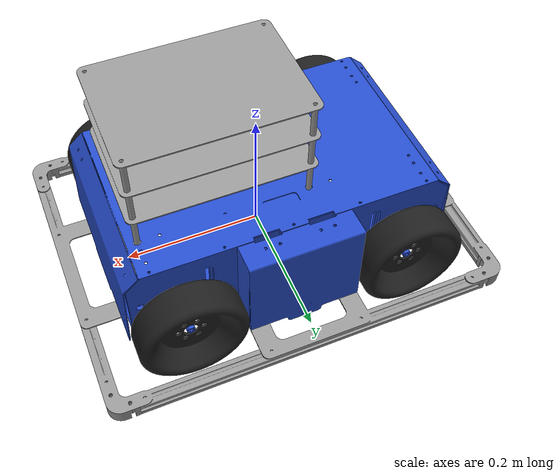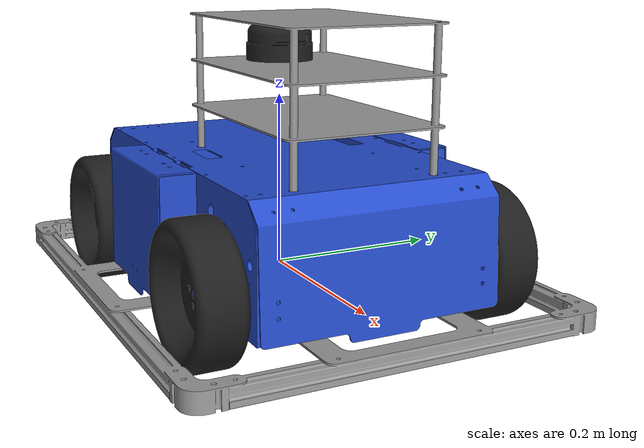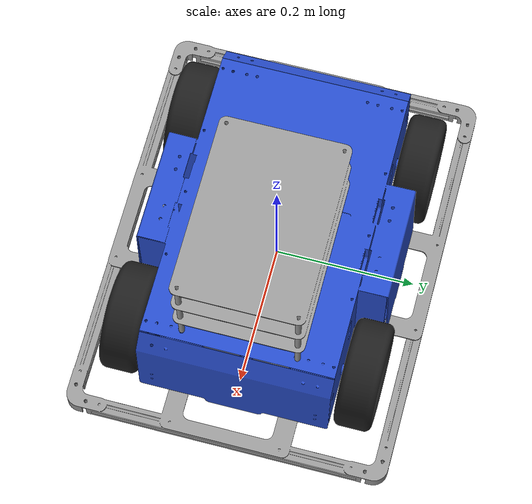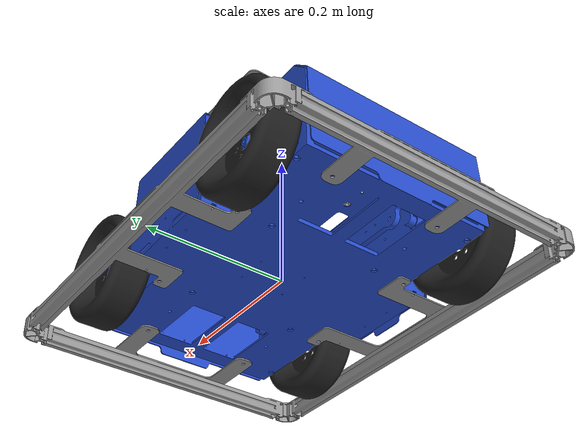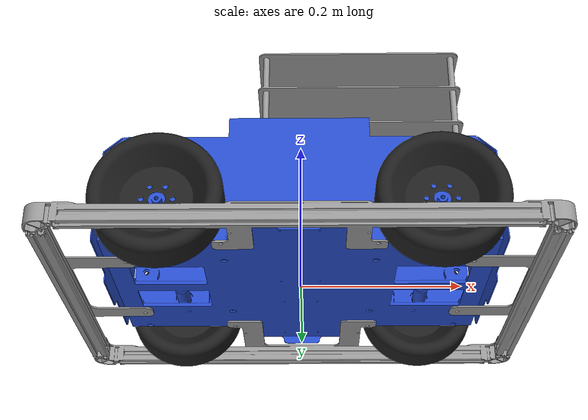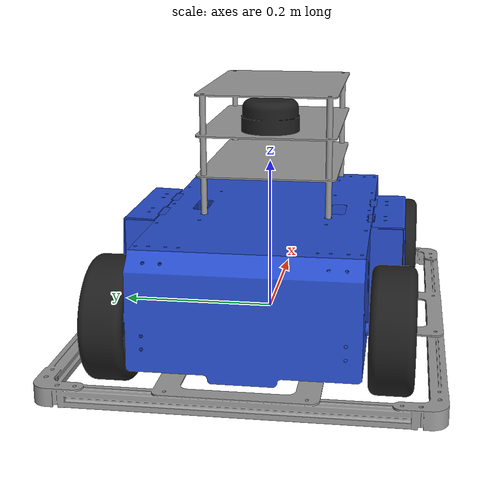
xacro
<?xml version="1.0" ?>
<robot name="amr" xmlns:xacro="http://ros.org/wiki/xacro">
  <xacro:include filename="$(find amr_description)/urdf/amr.gazebo.xacro"/>

  <link name="base_link">
    <visual>
      <origin xyz="0 0 0" rpy="0 0 0"/>
      <geometry>
        <mesh filename="package://amr_description/meshes/base.stl" scale="0.001 0.001 0.001"/>
      </geometry>
    </visual>

    <collision>
      <origin xyz="0.0 0 0.07" rpy="0 0 0"/>
      <geometry>
        <box size="0.48 0.36 0.14"/>
      </geometry>
    </collision>

    <inertial>
      <origin xyz="0 0 0.0" rpy="0 0 0"/>
      <mass value="20"/>
      <inertia ixx="0.33" ixy="0" ixz="0" iyy="0.54" iyz="0" izz="0.77"/>
    </inertial>
  </link>

  <joint name="bumper_joint" type="fixed">
    <parent link="base_link"/>
    <child link="bumper_link"/>
    <origin xyz="0 0 0" rpy="0 0 0"/>
  </joint>

  <link name="bumper_link">
    <visual>
      <origin xyz="0 0 0" rpy="0 0 0"/>
      <geometry>
        <mesh filename="package://amr_description/meshes/bumper.stl" scale="0.001 0.001 0.001"/>
      </geometry>
    </visual>

    <collision>
      <origin xyz="0 0 -0.011" rpy="0 0 0"/>
      <geometry>
        <box size="0.59 0.46 0.022"/>
      </geometry>
    </collision>

    <inertial>
      <origin xyz="0 0 0" rpy="0 0 0"/>
      <mass value="2.0"/>
      <inertia ixx="0.1" ixy="0" ixz="0" iyy="0.15" iyz="0" izz="0.2"/>
    </inertial>
  </link>

  <joint name="plate_joint1" type="fixed">
    <parent link="base_link"/>
    <child link="plate_link1"/>
    <origin xyz="0 0 0" rpy="0 0 0"/>
  </joint>

  <link name="plate_link1">
    <visual>
      <origin xyz="0 0 0" rpy="0 0 0"/>
      <geometry>
        <mesh filename="package://amr_description/meshes/top_plate.stl" scale="0.001 0.001 0.001"/>
      </geometry>
    </visual>

    <collision>
      <origin xyz="0.076 0 0.187" rpy="0 0 0"/>
      <geometry>
        <box size="0.26 0.18 0.002"/>
      </geometry>
    </collision>

    <collision>
      <origin xyz="0.076 0 0.239" rpy="0 0 0"/>
      <geometry>
        <box size="0.26 0.18 0.002"/>
      </geometry>
    </collision>

    <collision>
      <origin xyz="0.076 0 0.291" rpy="0 0 0"/>
      <geometry>
        <box size="0.26 0.18 0.002"/>
      </geometry>
    </collision>

    <collision>
      <origin xyz="-0.044 0.08 0.213" rpy="0 0 0"/>
      <geometry>
        <cylinder length="0.16" radius="0.004"/>
      </geometry>
    </collision>

    <collision>
      <origin xyz="-0.044 -0.08 0.213" rpy="0 0 0"/>
      <geometry>
        <cylinder length="0.16" radius="0.004"/>
      </geometry>
    </collision>

    <collision>
      <origin xyz="0.196 -0.08 0.213" rpy="0 0 0"/>
      <geometry>
        <cylinder length="0.16" radius="0.004"/>
      </geometry>
    </collision>

    <collision>
      <origin xyz="0.196 0.08 0.213" rpy="0 0 0"/>
      <geometry>
        <cylinder length="0.16" radius="0.004"/>
      </geometry>
    </collision>

    <inertial>
      <origin xyz="0.076 0 0.2" rpy="0 0 0"/>
      <mass value="0.5"/>
      <inertia ixx="0.014" ixy="0" ixz="0" iyy="0.024" iyz="0" izz="0.028"/>
    </inertial>
  </link>
  <joint name="wheel_fl_axle_joint" type="fixed">
      <origin xyz="0.161 0.167 0.036" rpy="0 0 0"/>
      <parent link="base_link"/>
      <child link="wheel_fl_axle_link"/>
  </joint>

  <link name="wheel_fl_axle_link">
    <inertial>
      <mass value="0.1"/>
      <origin xyz="0 0 0"/>
      <inertia ixx="1.0" ixy="0.0" ixz="0.0" iyy="1.0" iyz="0.0" izz="1.0"/>
    </inertial>

    <collision>
        <origin xyz="0 0 0" rpy="1.57 0 0"/>
        <geometry>
        <cylinder length="0.03" radius="0.01"/>
      </geometry>
    </collision>
  </link>

  <joint name="wheel_fl_joint" type="continuous">
    <parent link="wheel_fl_axle_link"/>
    <child link="wheel_fl_link"/>
    <origin xyz="0 0 0" rpy="0 0 0"/>
    <axis xyz="0 1 0"/>
    <dynamics damping="0.02" friction="0.01"/>
  </joint>

  <link name="wheel_fl_link">
    <visual>
      <origin xyz="0 0 0" rpy="0 0 0"/>
      <geometry>
        <mesh filename="package://amr_description/meshes/wheel.stl" scale="0.001 0.001 0.001"/>
      </geometry>
    </visual>

    <collision>
      <origin xyz="0 0 0" rpy="1.57 0 0"/>
      <geometry>
        <cylinder length="0.053" radius="0.072"/>
      </geometry>
    </collision>

    <inertial>
      <origin xyz="0 0 0" />
      <mass value="1.12" />
      <inertia ixx="0.0012" ixy="0" ixz="0.0" iyy="0.0021" iyz="0" izz="0.0012"/>
    </inertial>
  </link>

  <joint name="wheel_fr_axle_joint" type="fixed">
      <origin xyz="0.161 -0.167 0.036" rpy="0 0 0"/>
      <parent link="base_link"/>
      <child link="wheel_fr_axle_link"/>
  </joint>

  <link name="wheel_fr_axle_link">
    <inertial>
      <mass value="0.1"/>
      <origin xyz="0 0 0"/>
      <inertia ixx="1.0" ixy="0.0" ixz="0.0" iyy="1.0" iyz="0.0" izz="1.0"/>
    </inertial>

    <collision>
        <origin xyz="0 0 0" rpy="1.57 0 0"/>
        <geometry>
        <cylinder length="0.03" radius="0.01"/>
      </geometry>
    </collision>
  </link>

  <joint name="wheel_fr_joint" type="continuous">
    <parent link="wheel_fr_axle_link"/>
    <child link="wheel_fr_link"/>
    <origin xyz="0 0 0" rpy="0 0 0"/>
    <axis xyz="0 1 0"/>
    <dynamics damping="0.02" friction="0.01"/>
  </joint>

  <link name="wheel_fr_link">
    <visual>
      <origin xyz="0 0 0" rpy="0 0 0"/>
      <geometry>
        <mesh filename="package://amr_description/meshes/wheel.stl" scale="0.001 0.001 0.001"/>
      </geometry>
    </visual>

    <collision>
      <origin xyz="0 0 0" rpy="1.57 0 0"/>
      <geometry>
        <cylinder length="0.053" radius="0.072"/>
      </geometry>
    </collision>

    <inertial>
      <origin xyz="0 0 0" />
      <mass value="1.12" />
      <inertia ixx="0.0012" ixy="0" ixz="0.0" iyy="0.0021" iyz="0" izz="0.0012"/>
    </inertial>
  </link>

  <joint name="wheel_rl_axle_joint" type="fixed">
      <origin xyz="-0.161 0.167 0.036" rpy="0 0 0"/>
      <parent link="base_link"/>
      <child link="wheel_rl_axle_link"/>
  </joint>

  <link name="wheel_rl_axle_link">
    <inertial>
      <mass value="0.1"/>
      <origin xyz="0 0 0"/>
      <inertia ixx="1.0" ixy="0.0" ixz="0.0" iyy="1.0" iyz="0.0" izz="1.0"/>
    </inertial>
    <collision>
        <origin xyz="0 0 0" rpy="1.57 0 0"/>
        <geometry>
        <cylinder length="0.03" radius="0.01"/>
      </geometry>
    </collision>
  </link>

  <joint name="wheel_rl_joint" type="continuous">
    <parent link="wheel_rl_axle_link"/>
    <child link="wheel_rl_link"/>
    <origin xyz="0 0 0" rpy="0 0 0"/>
    <axis xyz="0 1 0"/>
    <dynamics damping="0.02" friction="0.01"/>
  </joint>

  <link name="wheel_rl_link">
    <visual>
      <origin xyz="0 0 0" rpy="0 0 0"/>
      <geometry>
        <mesh filename="package://amr_description/meshes/wheel.stl" scale="0.001 0.001 0.001"/>
      </geometry>
    </visual>

    <collision>
      <origin xyz="0 0 0" rpy="1.57 0 0"/>
      <geometry>
        <cylinder length="0.053" radius="0.072"/>
      </geometry>
    </collision>

    <inertial>
      <origin xyz="0 0 0" />
      <mass value="1.12" />
      <inertia ixx="0.0012" ixy="0" ixz="0.0" iyy="0.0021" iyz="0" izz="0.0012"/>
    </inertial>
  </link>

  <joint name="wheel_rr_axle_joint" type="fixed">
      <origin xyz="-0.161 -0.167 0.036" rpy="0 0 0"/>
      <parent link="base_link"/>
      <child link="wheel_rr_axle_link"/>
  </joint>

  <link name="wheel_rr_axle_link">
    <inertial>
      <mass value="0.1"/>
      <origin xyz="0 0 0"/>
      <inertia ixx="1.0" ixy="0.0" ixz="0.0" iyy="1.0" iyz="0.0" izz="1.0"/>
    </inertial>
    <collision>
        <origin xyz="0 0 0" rpy="1.57 0 0"/>
        <geometry>
          <cylinder length="0.03" radius="0.01"/>
        </geometry>
    </collision>
  </link>

  <joint name="wheel_rr_joint" type="continuous">
    <parent link="wheel_rr_axle_link"/>
    <child link="wheel_rr_link"/>
    <origin xyz="0 0 0" rpy="0 0 0"/>
    <axis xyz="0 1 0"/>
    <dynamics damping="0.02" friction="0.01"/>
  </joint>

  <link name="wheel_rr_link">
    <visual>
      <origin xyz="0 0 0" rpy="0 0 0"/>
      <geometry>
        <mesh filename="package://amr_description/meshes/wheel.stl" scale="0.001 0.001 0.001"/>
      </geometry>
    </visual>

    <collision>
      <origin xyz="0 0 0" rpy="1.57 0 0"/>
      <geometry>
        <cylinder length="0.053" radius="0.072"/>
      </geometry>
    </collision>

    <inertial>
      <origin xyz="0 0 0" />
      <mass value="1.12" />
      <inertia ixx="0.0012" ixy="0" ixz="0.0" iyy="0.0021" iyz="0" izz="0.0012"/>
    </inertial>
  </link>

  <joint name="imu_joint" type="fixed">
    <parent link="base_link"/>
    <child link="imu_link"/>
    <origin xyz="0 0 0.01" rpy="0 0 0"/>
  </joint>

  <link name="imu_link"/>

  <joint name="scan_joint" type="fixed">
    <parent link="laser_link"/>
    <child link="base_scan"/>
    <origin xyz="0 0 0.03" rpy="0 0 0"/>
  </joint>

  <link name="base_scan"/>

  <joint name="laser_joint" type="fixed">
    <parent link="base_link"/>
    <child link="laser_link"/>
    <origin xyz="0 0 0.24" rpy="0 0 0"/>   <!--  modify height of rp lidar here -->
    <!--  top shelf 0.29 -->
  </joint>

  <link name="laser_link">
    <visual>
      <origin xyz="0 0 0" rpy="0 0 0"/>
      <geometry>
        <mesh filename="package://amr_description/meshes/rplidar.stl" scale="0.001 0.001 0.001"/>
      </geometry>
    </visual>

    <collision>
      <origin xyz="0 0 0.02" rpy="0 0 0"/>
      <geometry>
        <cylinder length="0.04" radius="0.04"/>
      </geometry>
    </collision>

    <inertial>
      <mass value="0.166881" />
      <origin xyz="0 0 0" />
      <inertia ixx="0.007841" ixy="0" ixz="0.000033" iyy="0.007681" iyz="0" izz="0.011137"/>
    </inertial>
  </link>
</robot>
